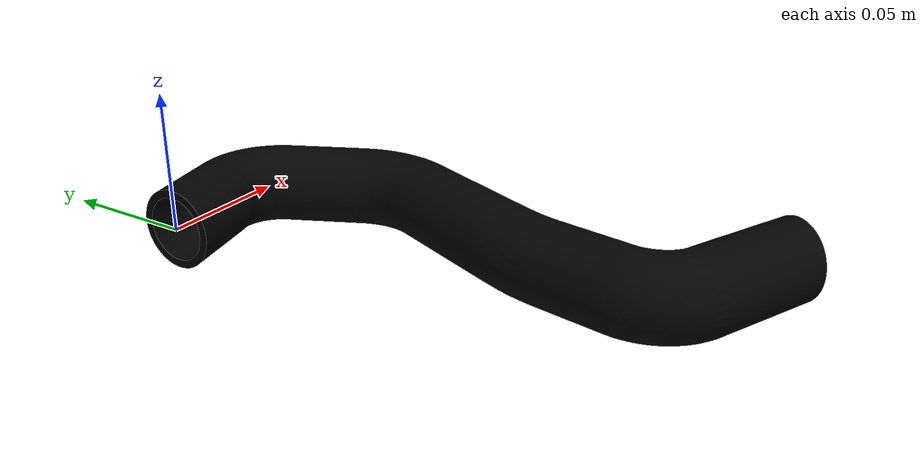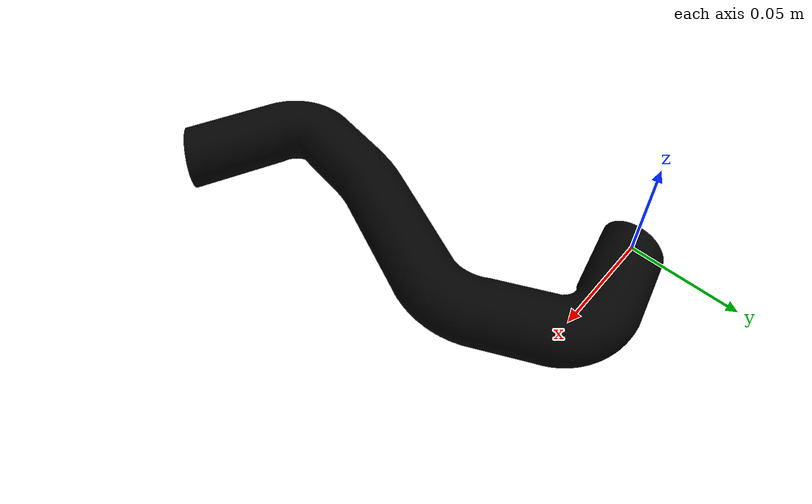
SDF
<sdf version="1.6">
  <model name="truck_part_hose">
    <static>false</static>
    <link name="new_link">
      <collision name="Cylinder">
        <pose>0.02790 0.00712 -0.00098 -0.25526 1.57080 0.00000</pose>
        <geometry>
          <cylinder>
            <radius>0.01499</radius>
            <length>0.06576</length>
          </cylinder>
        </geometry>
        <surface>
          <contact/>
        </surface>
      </collision>

      <collision name="Cylinder.001">
        <pose>0.06353 -0.01540 -0.00001 1.09756 1.57080 0.00000</pose>
        <geometry>
          <cylinder>
            <radius>0.01499</radius>
            <length>0.07226</length>
          </cylinder>
        </geometry>
        <surface>
          <contact/>
        </surface>
      </collision>

      <collision name="Cylinder.002">
        <pose>0.05760 -0.09992 -0.00001 1.88680 1.57080 0.00000</pose>
        <geometry>
          <cylinder>
            <radius>0.01499</radius>
            <length>0.11823</length>
          </cylinder>
        </geometry>
        <surface>
          <contact/>
        </surface>
      </collision>

      <collision name="Cylinder.003">
        <pose>0.06222 -0.17575 -0.00001 0.44248 1.57080 0.00000</pose>
        <geometry>
          <cylinder>
            <radius>0.01499</radius>
            <length>0.07233</length>
          </cylinder>
        </geometry>
        <surface>
          <contact/>
        </surface>
      </collision>

      <inertial>
        <pose>0.05281 -0.07099 -0.00026 0.00000 0.00000 0.00000</pose>
        <mass>0.22000</mass>
        <inertia>
          <ixx>0.00024</ixx>
          <ixy>0.00011</ixy>
          <ixz>-0.00000</ixz>
          <iyy>0.00019</iyy>
          <iyz>0.00000</iyz>
          <izz>0.00029</izz>
        </inertia>
      </inertial>

      <visual name="node0">
        <pose>0.00000 0.00000 0.00000 0.00000 0.00000 0.00000</pose>
        <geometry>
          <mesh>
            <uri>model://truck_part_hose/meshes/Body.dae</uri>
            <scale>1.00000 1.00000 1.00000</scale>
          </mesh>
        </geometry>
        <material>
          <diffuse>0.00784 0.00784 0.00784 1.00000</diffuse>
          <specular>1.00000 1.00000 1.00000 0.32941</specular>
        </material>
      </visual>
    </link>
  </model>
</sdf>
